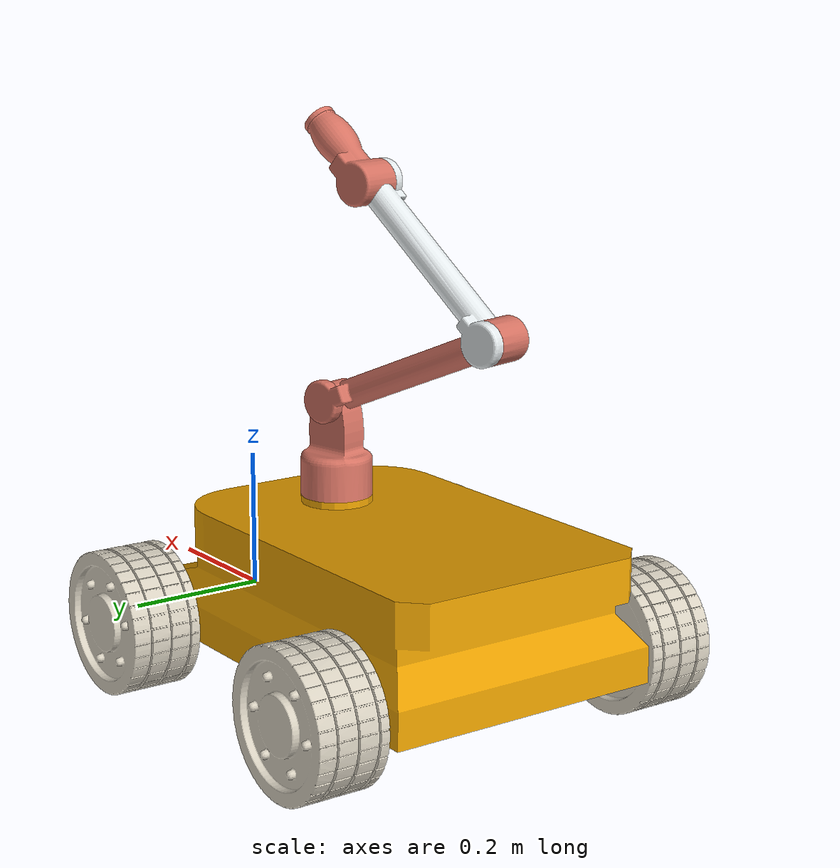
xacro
<?xml version="1.0" encoding="utf-8"?>
<robot name="proj7" xmlns:xacro="http://www.ros.org/wiki/xacro">

<xacro:include filename="$(find proj7)/urdf/gazebo_refs.gazebo.xacro" />
<xacro:include filename="$(find proj7)/urdf/transmission.trans.xacro" />
  <link
    name="base_link">
    <inertial>
      <origin
        xyz="-0.350817488517824 -5.55111512312578E-17 0.085189956317522"
        rpy="0 0 0" />
      <mass value="39.1290758905039" />
      <inertia
        ixx="0.57820270304639"
        ixy="5.50155675767055E-17"
        ixz="0.0411160711805077"
        iyy="1.24922666790371"
        iyz="2.87867261314556E-17"
        izz="1.60162243877756" />
    </inertial>
    <visual>
      <origin
        xyz="0 0 0"
        rpy="0 0 0" />
      <geometry>
        <mesh
          filename="package://proj7/meshes/base_link.STL" />
      </geometry>
      <gazebo>
      <material
        name="">
        <color
          rgba="0.792156862745098 0.819607843137255 0.933333333333333 1" />
      </material>
    </gazebo>
    </visual>
    <collision>
      <origin
        xyz="0 0 0"
        rpy="0 0 0" />
      <geometry>
        <mesh
          filename="package://proj7/meshes/base_link.STL" />
      </geometry>
    </collision>
  </link>
  <link
    name="wheel1">
    <inertial>
      <origin
        xyz="1.84071646813777E-11 -0.0798978308085576 -1.84123272184422E-11"
        rpy="0 0 0" />
      <mass
        value="2.8181635923232" />
      <inertia
        ixx="0.00910838466103365"
        ixy="7.45691668896085E-13"
        ixz="6.4447164477413E-16"
        iyy="0.0141617550665306"
        iyz="-2.97733458732594E-13"
        izz="0.00910838466103446" />
    </inertial>
    <visual>
      <origin
        xyz="0 0 0"
        rpy="0 0 0" />
      <geometry>
        <mesh
          filename="package://proj7/meshes/wheel1.STL" />
      </geometry>
      <material
        name="">
        <color
          rgba="0.843137254901961 0.815686274509804 0.752941176470588 1" />
      </material>
    </visual>
    <collision>
      <origin
        xyz="0 0 0"
        rpy="0 0 0" />
      <geometry>
        <mesh
          filename="package://proj7/meshes/wheel1.STL" />
      </geometry>
    </collision>
  </link>
  <joint
    name="fr_joint"
    type="continuous">
    <origin
      xyz="-0.1 -0.18 0.0250000000000001"
      rpy="0 0 0" />
    <parent
      link="base_link" />
    <child
      link="wheel1" />
    <axis
      xyz="0 1 0" />
  </joint>
  <link
    name="wheel2">
    <inertial>
      <origin
        xyz="-3.19103285462141E-11 0.0798978308085577 1.3225975870057E-11"
        rpy="0 0 0" />
      <mass
        value="2.81816359232321" />
      <inertia
        ixx="0.00910838466103428"
        ixy="7.43290915100517E-13"
        ixz="1.30281564358401E-15"
        iyy="0.0141617550665316"
        iyz="-7.63146339114582E-13"
        izz="0.00910838466103485" />
    </inertial>
    <visual>
      <origin
        xyz="0 0 0"
        rpy="0 0 0" />
      <geometry>
        <mesh
          filename="package://proj7/meshes/wheel2.STL" />
      </geometry>
      <material
        name="">
        <color
          rgba="0.843137254901961 0.815686274509804 0.752941176470588 1" />
      </material>
    </visual>
    <collision>
      <origin
        xyz="0 0 0"
        rpy="0 0 0" />
      <geometry>
        <mesh
          filename="package://proj7/meshes/wheel2.STL" />
      </geometry>
    </collision>
  </link>
  <joint
    name="fl_joint"
    type="continuous">
    <origin
      xyz="-0.1 0.18 0.0249999999999999"
      rpy="0 0 0" />
    <parent
      link="base_link" />
    <child
      link="wheel2" />
    <axis
      xyz="0 1 0" />
  </joint>
  <link
    name="wheel3">
    <inertial>
      <origin
        xyz="-2.70886091335854E-11 -0.0798978308085576 -1.54760093629136E-11"
        rpy="0 0 0" />
      <mass
        value="2.81816359232321" />
      <inertia
        ixx="0.00910838466103435"
        ixy="-5.79266533676345E-13"
        ixz="-1.08769322282951E-15"
        iyy="0.0141617550665311"
        iyz="-7.68222231200298E-13"
        izz="0.00910838466103429" />
    </inertial>
    <visual>
      <origin
        xyz="0 0 0"
        rpy="0 0 0" />
      <geometry>
        <mesh
          filename="package://proj7/meshes/wheel3.STL" />
      </geometry>
      <material
        name="">
        <color
          rgba="0.843137254901961 0.815686274509804 0.752941176470588 1" />
      </material>
    </visual>
    <collision>
      <origin
        xyz="0 0 0"
        rpy="0 0 0" />
      <geometry>
        <mesh
          filename="package://proj7/meshes/wheel3.STL" />
      </geometry>
    </collision>
  </link>
  <joint
    name="rr_joint"
    type="continuous">
    <origin
      xyz="-0.55 -0.18 0.025"
      rpy="0 0 0" />
    <parent
      link="base_link" />
    <child
      link="wheel3" />
    <axis
      xyz="0 1 0" />
  </joint>
  <link
    name="wheel4">
    <inertial>
      <origin
        xyz="3.85323994933628E-11 0.0798978308085575 -9.15667541789844E-12"
        rpy="0 0 0" />
      <mass
        value="2.81816359232319" />
      <inertia
        ixx="0.00910838466103397"
        ixy="-9.80464853400056E-13"
        ixz="1.50063397987546E-15"
        iyy="0.0141617550665322"
        iyz="7.28431217376692E-13"
        izz="0.00910838466103579" />
    </inertial>
    <visual>
      <origin
        xyz="0 0 0"
        rpy="0 0 0" />
      <geometry>
        <mesh
          filename="package://proj7/meshes/wheel4.STL" />
      </geometry>
      <material
        name="">
        <color
          rgba="0.843137254901961 0.815686274509804 0.752941176470588 1" />
      </material>
    </visual>
    <collision>
      <origin
        xyz="0 0 0"
        rpy="0 0 0" />
      <geometry>
        <mesh
          filename="package://proj7/meshes/wheel4.STL" />
      </geometry>
    </collision>
  </link>
  <joint
    name="rl_joint"
    type="continuous">
    <origin
      xyz="-0.55 0.18 0.0250000000000001"
      rpy="0 0 0" />
    <parent
      link="base_link" />
    <child
      link="wheel4" />
    <axis
      xyz="0 1 0" />
  </joint>
  <link
    name="arm_base">
    <inertial>
      <origin
        xyz="-8.8697E-05 0.00036378 0.051377"
        rpy="0 0 0" />
      <mass
        value="0.67121" />
      <inertia
        ixx="0.0013168"
        ixy="-9.0921E-06"
        ixz="5.0123E-06"
        iyy="0.0013519"
        iyz="-2.0551E-05"
        izz="0.00067139" />
    </inertial>
    <visual>
      <origin
        xyz="0 0 0"
        rpy="0 0 0" />
      <geometry>
        <mesh
          filename="package://proj7/meshes/arm_base.STL" />
      </geometry>
      <material
        name="">
        <color
          rgba="0.83922 0.45098 0.38824 1" />
      </material>
    </visual>
    <collision>
      <origin
        xyz="0 0 0"
        rpy="0 0 0" />
      <geometry>
        <mesh
          filename="package://proj7/meshes/arm_base.STL" />
      </geometry>
    </collision>
  </link>
  <joint
    name="armbase_joint"
    type="revolute">
    <origin
      xyz="-0.221675135142322 0 0.19"
      rpy="0 0 3.14159265358979" />
    <parent
      link="base_link" />
    <child
      link="arm_base" />
    <axis
      xyz="0 0 1" />
    <limit
      lower="-3.14"
      upper="3.14"
      effort="0"
      velocity="0" />
  </joint>
  <link
    name="link1">
    <inertial>
      <origin
        xyz="0.14912 0.064883 -0.036025"
        rpy="0 0 0" />
      <mass
        value="0.50801" />
      <inertia
        ixx="0.0015293"
        ixy="-0.0019793"
        ixz="0.0014823"
        iyy="0.0051057"
        iyz="0.00065906"
        izz="0.0054858" />
    </inertial>
    <visual>
      <origin
        xyz="0 0 0"
        rpy="0 0 0" />
      <geometry>
        <mesh
          filename="package://proj7/meshes/link1.STL" />
      </geometry>
      <material
        name="">
        <color
          rgba="0.83922 0.45098 0.38824 1" />
      </material>
    </visual>
    <collision>
      <origin
        xyz="0 0 0"
        rpy="0 0 0" />
      <geometry>
        <mesh
          filename="package://proj7/meshes/link1.STL" />
      </geometry>
    </collision>
  </link>
  <joint
    name="link1_joint"
    type="revolute">
    <origin
      xyz="0 0 0.13554"
      rpy="1.5708 0 0" />
    <parent
      link="arm_base" />
    <child
      link="link1" />
    <axis
      xyz="-0.23695 0 -0.97152" />
    <limit
      lower="-2"
      upper="2"
      effort="0"
      velocity="0" />
  </joint>
  <link
    name="link2">
    <inertial>
      <origin
        xyz="-0.10678 0.09301 2.987E-05"
        rpy="0 0 0" />
      <mass
        value="0.42658" />
      <inertia
        ixx="0.0018705"
        ixy="0.0019663"
        ixz="-0.00031465"
        iyy="0.0024153"
        iyz="0.00027407"
        izz="0.0040759" />
    </inertial>
    <visual>
      <origin
        xyz="0 0 0"
        rpy="0 0 0" />
      <geometry>
        <mesh
          filename="package://proj7/meshes/link2.STL" />
      </geometry>
      <material
        name="">
        <color
          rgba="0.89804 0.92157 0.92941 1" />
      </material>
    </visual>
    <collision>
      <origin
        xyz="0 0 0"
        rpy="0 0 0" />
      <geometry>
        <mesh
          filename="package://proj7/meshes/link2.STL" />
      </geometry>
    </collision>
  </link>
  <joint
    name="link2_joint"
    type="revolute">
    <origin
      xyz="0.26753 0.11646 -0.06525"
      rpy="0 0.23922 0" />
    <parent
      link="link1" />
    <child
      link="link2" />
    <axis
      xyz="0 0 1" />
    <limit
      lower="-2"
      upper="2"
      effort="0"
      velocity="0" />
  </joint>
  <link
    name="end">
    <inertial>
      <origin
        xyz="0.032273 0.027505 -0.0053217"
        rpy="0 0 0" />
      <mass
        value="0.3025" />
      <inertia
        ixx="0.00033037"
        ixy="-0.00024289"
        ixz="-4.6031E-05"
        iyy="0.00040837"
        iyz="-3.923E-05"
        izz="0.00060746" />
    </inertial>
    <visual>
      <origin
        xyz="0 0 0"
        rpy="0 0 0" />
      <geometry>
        <mesh
          filename="package://proj7/meshes/end.STL" />
      </geometry>
      <material
        name="">
        <color
          rgba="0.83922 0.45098 0.38824 1" />
      </material>
    </visual>
    <collision>
      <origin
        xyz="0 0 0"
        rpy="0 0 0" />
      <geometry>
        <mesh
          filename="package://proj7/meshes/end.STL" />
      </geometry>
    </collision>
  </link>
  <joint
    name="end_joint"
    type="revolute">
    <origin
      xyz="-0.21373 0.18617 0"
      rpy="-3.1416 0 -3.1416" />
    <parent
      link="link2" />
    <child
      link="end" />
    <axis
      xyz="0 0 -1" />
    <limit
      lower="-2"
      upper="2"
      effort="0"
      velocity="0" />
  </joint>
</robot>
